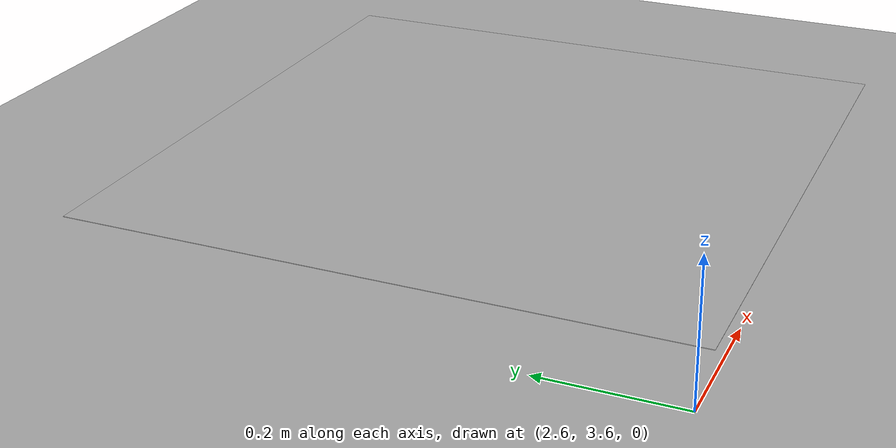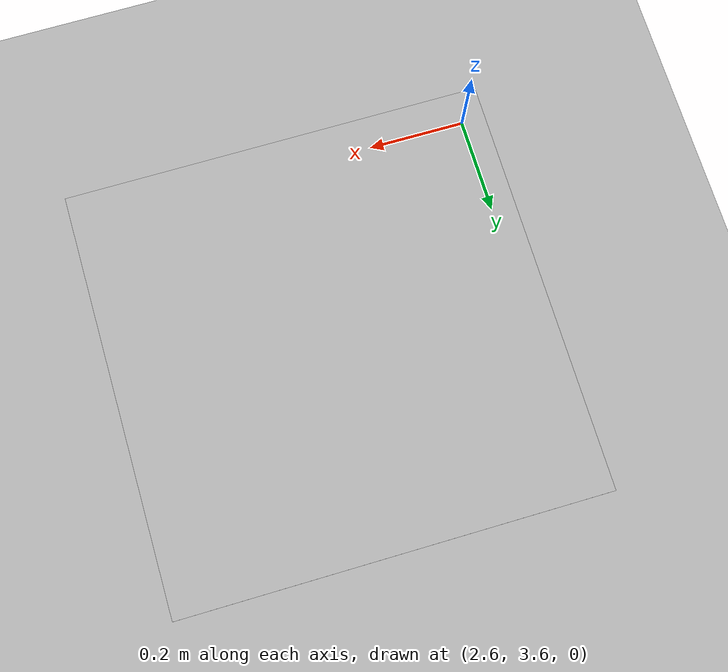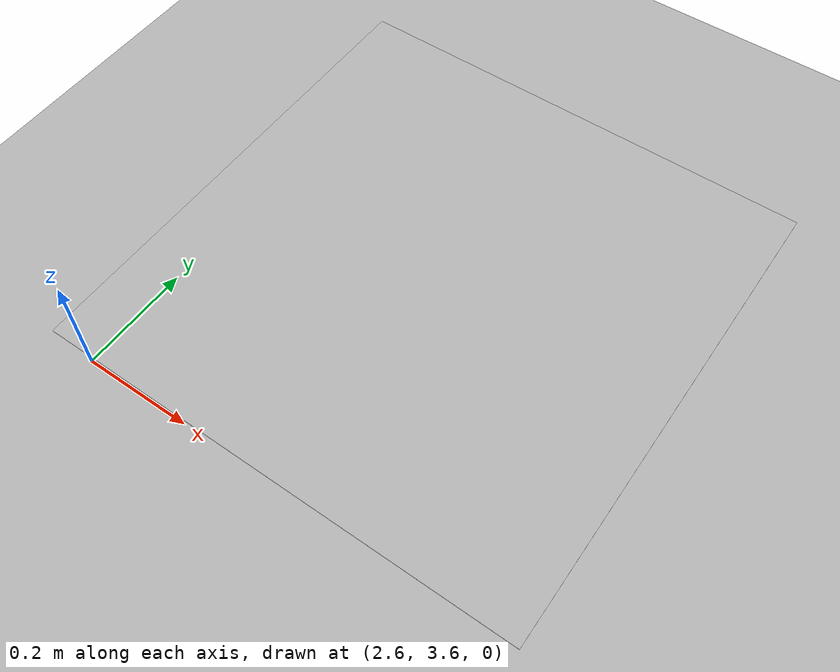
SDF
<sdf version="1.7">
 <world name="default">
  <light name="sun" type="directional">
   <pose>0 0 10 0 -0 0</pose>
   <diffuse>0.8 0.8 0.8 1</diffuse>
   <specular>0.2 0.2 0.2 1</specular>
   <attenuation>
    <range>1000</range>
    <constant>0.9</constant>
    <linear>0.01</linear>
    <quadratic>0.001</quadratic>
   </attenuation>
   <direction>-0.5 0.1 -0.9</direction>
   <spot><inner_angle>0</inner_angle><outer_angle>0</outer_angle><falloff>0</falloff></spot>
  </light>
  <model name="ground_plane">
   <static>1</static>
   <link name="link">
    <collision name="collision">
     <geometry><plane><normal>0 0 1</normal><size>100 100</size></plane></geometry>
     <surface>
      <contact><collide_bitmask>65535</collide_bitmask></contact>
      <friction><ode><mu>100</mu><mu2>50</mu2></ode></friction>
     </surface>
    </collision>
    <visual name="visual">
     <cast_shadows>0</cast_shadows>
     <geometry><plane><normal>0 0 1</normal><size>100 100</size></plane></geometry>
     <material>
      <script><uri>file://media/materials/scripts/gazebo.material</uri><name>Gazebo/Grey</name></script>
     </material>
    </visual>
   </link>
  </model>
  <gravity>0 0 -9.8</gravity>
  <magnetic_field>6e-06 2.3e-05 -4.2e-05</magnetic_field>
  <atmosphere type="adiabatic"/>
  <physics type="ode">
   <max_step_size>0.001</max_step_size>
   <real_time_factor>1</real_time_factor>
   <real_time_update_rate>1000</real_time_update_rate>
  </physics>
  <scene><ambient>0.4 0.4 0.4 1</ambient><background>0.7 0.7 0.7 1</background><shadows>1</shadows></scene>
  <spherical_coordinates>
   <surface_model>EARTH_WGS84</surface_model>
   <latitude_deg>0</latitude_deg>
   <longitude_deg>0</longitude_deg>
   <elevation>0</elevation>
   <heading_deg>0</heading_deg>
  </spherical_coordinates>
  <model name="lawn_plane">
   <static>1</static>
   <link name="link">
    <collision name="collision"><geometry><box><size>20 20 0.1</size></box></geometry></collision>
    <visual name="visual">
     <cast_shadows>0</cast_shadows>
     <geometry><box><size>20 20 0.1</size></box></geometry>
     <material>
      <script>
       <uri>model://lawn_plane/materials/scripts</uri>
       <uri>model://lawn_plane/materials/textures</uri>
       <name>vrc/lawn</name>
      </script>
     </material>
    </visual>
   </link>
  </model>
  <model name="apriltags">
   <static>1</static>
   <pose>3 4 0.1 0 -0 0</pose>
   <link name="link">
    <collision name="collision">
     <geometry><plane><normal>0 0 1</normal><size>0.85 0.85</size></plane></geometry>
     <surface><friction><ode><mu>100</mu><mu2>50</mu2></ode></friction></surface>
    </collision>
    <visual name="visual">
     <cast_shadows>0</cast_shadows>
     <geometry><plane><normal>0 0 1</normal><size>0.85 0.85</size></plane></geometry>
     <material>
      <script>
       <uri>model://apriltags/materials/scripts</uri>
       <uri>model://apriltags/materials/textures/</uri>
       <name>apriltags/Image</name>
      </script>
     </material>
    </visual>
   </link>
  </model>
 </world>
</sdf>
